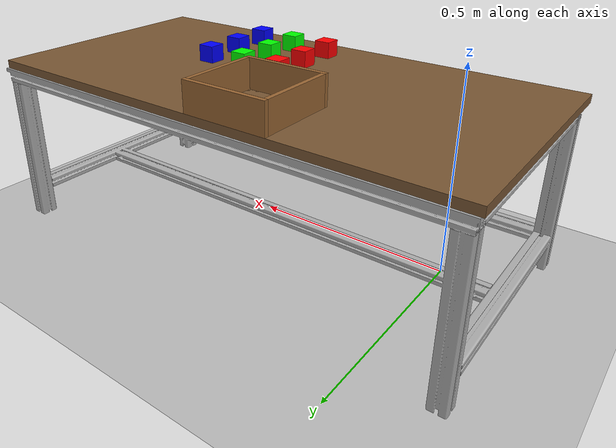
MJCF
<mujoco model="grasping_scene">
  <compiler angle="radian"/>

  <option timestep="0.001" gravity="0 0 -9.81" integrator="implicitfast" impratio="10">
      <flag contact="enable" energy="enable" gravity="enable"/>
  </option>

  <visual>
    <rgba haze="0.15 0.25 0.35 1"/>
    <global azimuth="120" elevation="-20"/>
  </visual>

  <asset>
    <texture type="skybox" builtin="gradient" rgb1="0.68 0.68 0.68" rgb2="0.3 0.3 0.3" width="512" height="3072"/>
    <texture name="groundplane" type="2d" builtin="checker" mark="edge"  rgb1="0.68 0.68 0.68" rgb2="0.8 0.8 0.8"
      markrgb="0.68 0.68 0.68" width="300" height="300"/>
    <material name="groundplane" reflectance="0.2" shininess="0.0" specular="0.0" texrepeat="5 5" texture="groundplane" texuniform="true"/>

    <texture name="wood" type="2d" file="../textures/wood.png"/>
    <material name="wood" texture="wood" texrepeat="1 1" texuniform="true" rgba="0.68 0.68 0.68 1"/>

    <!-- 包含table的mesh -->
    <mesh name="table" file="../objects/table/table.STL" scale="1.0 1.0 0.66"/>
  </asset>

  <worldbody>
    <!-- Floor -->
    <geom condim="3" material="groundplane" name="floor" pos="0 0 0" size="3 3 .125" type="plane"/>
    <light diffuse=".8 .8 .8" dir="0 -.15 -1" directional="false" pos="1 1 8.0" specular="0.3 0.3 0.3" castshadow="false"/>
    <light diffuse=".8 .8 .8" dir="0 -.15 -1" directional="false" pos="-3. -3. 8.0" specular="0.3 0.3 0.3" castshadow="false"/>

    <!-- 相机 -->
    <camera mode="fixed" name="frontview" pos="1.6 0 1.45" quat="0.56 0.43 0.43 0.56"/>
    <camera mode="fixed" name="birdview" pos="-0.2 0 3.0" quat="0.7071 0 0 0.7071"/>
    <camera mode="fixed" name="agentview" pos="0.5 0 1.35" quat="0.653 0.271 0.271 0.653"/>
    <camera mode="fixed" name="sideview" pos="-0.05651774593317116 1.2761224129427358 1.4879572214102434" quat="0.009905065491771751 0.006877963156909582 0.5912228352893879 0.806418094001364" />

    <!-- 桌子（直接定义，不再include table.xml以避免嵌套问题） -->
    <body name="table" pos="1.0 0.4 0.0" euler="0 0 0">
        <geom pos="-0.6 -0.3 0.411" contype="0" conaffinity="0" group="1" euler="0 0 1.57" type="box" size="0.3 0.6 0.01" material="wood"/>
        <geom pos="-0.6 -0.3 0.411" conaffinity="1" condim="3" contype="0" group="4" euler="0 0 1.57" type="box" size="0.3 0.6 0.01" />
        <geom type="mesh" contype="0" conaffinity="0" group="1" rgba="0.68 0.68 0.68 1" mesh="table" friction="0.95 0.9 0.9"/>
        <geom type="mesh" conaffinity="1" condim="3" contype="0" group="4" rgba="0.68 0.68 0.68 1" mesh="table" friction="0.95 0.9 0.9"/>
    </body>

    <!-- 篮子 (用于放置抓取的方块) -->
    <body name="basket" pos="0.3 0.3 0.411">
        <!-- 篮子底 -->
        <geom name="basket_bottom" type="box" size="0.1 0.1 0.005" pos="0 0 0.005" rgba="0.6 0.4 0.2 1" friction="1 0.5 0.5"/>
        <!-- 篮子四壁 -->
        <geom name="basket_wall1" type="box" size="0.1 0.005 0.04" pos="0 0.095 0.04" rgba="0.6 0.4 0.2 1"/>
        <geom name="basket_wall2" type="box" size="0.1 0.005 0.04" pos="0 -0.095 0.04" rgba="0.6 0.4 0.2 1"/>
        <geom name="basket_wall3" type="box" size="0.005 0.09 0.04" pos="0.095 0 0.04" rgba="0.6 0.4 0.2 1"/>
        <geom name="basket_wall4" type="box" size="0.005 0.09 0.04" pos="-0.095 0 0.04" rgba="0.6 0.4 0.2 1"/>
    </body>

    <!-- 方块（用于抓取任务），3x3排列，3红3绿3蓝，200g -->
    <!-- 红色方块 -->
    <body name="cube_red_1" pos="0.4 -0.1 0.442">
        <geom name="cube_geom_red_1" type="box" size="0.02 0.02 0.02" rgba="1 0 0 1" mass="0.2" friction="0.95 0.9 0.9"/>
        <joint name="cube_joint_red_1" type="free"/>
    </body>
    <body name="cube_red_2" pos="0.4 0.0 0.442">
        <geom name="cube_geom_red_2" type="box" size="0.02 0.02 0.02" rgba="1 0 0 1" mass="0.2" friction="0.95 0.9 0.9"/>
        <joint name="cube_joint_red_2" type="free"/>
    </body>
    <body name="cube_red_3" pos="0.4 0.1 0.442">
        <geom name="cube_geom_red_3" type="box" size="0.02 0.02 0.02" rgba="1 0 0 1" mass="0.2" friction="0.95 0.9 0.9"/>
        <joint name="cube_joint_red_3" type="free"/>
    </body>

    <!-- 绿色方块 -->
    <body name="cube_green_1" pos="0.5 -0.1 0.442">
        <geom name="cube_geom_green_1" type="box" size="0.02 0.02 0.02" rgba="0 1 0 1" mass="0.2" friction="0.95 0.9 0.9"/>
        <joint name="cube_joint_green_1" type="free"/>
    </body>
    <body name="cube" pos="0.5 0.0 0.442">
        <geom name="cube_geom" type="box" size="0.02 0.02 0.02" rgba="0 1 0 1" mass="0.2" friction="0.95 0.9 0.9"/>
        <joint name="cube_joint" type="free"/>
    </body>
    <body name="cube_green_3" pos="0.5 0.1 0.442">
        <geom name="cube_geom_green_3" type="box" size="0.02 0.02 0.02" rgba="0 1 0 1" mass="0.2" friction="0.95 0.9 0.9"/>
        <joint name="cube_joint_green_3" type="free"/>
    </body>

    <!-- 蓝色方块 -->
    <body name="cube_blue_1" pos="0.6 -0.1 0.442">
        <geom name="cube_geom_blue_1" type="box" size="0.02 0.02 0.02" rgba="0 0 1 1" mass="0.2" friction="0.95 0.9 0.9"/>
        <joint name="cube_joint_blue_1" type="free"/>
    </body>
    <body name="cube_blue_2" pos="0.6 0.0 0.442">
        <geom name="cube_geom_blue_2" type="box" size="0.02 0.02 0.02" rgba="0 0 1 1" mass="0.2" friction="0.95 0.9 0.9"/>
        <joint name="cube_joint_blue_2" type="free"/>
    </body>
    <body name="cube_blue_3" pos="0.6 0.1 0.442">
        <geom name="cube_geom_blue_3" type="box" size="0.02 0.02 0.02" rgba="0 0 1 1" mass="0.2" friction="0.95 0.9 0.9"/>
        <joint name="cube_joint_blue_3" type="free"/>
    </body>

  </worldbody>
</mujoco>
